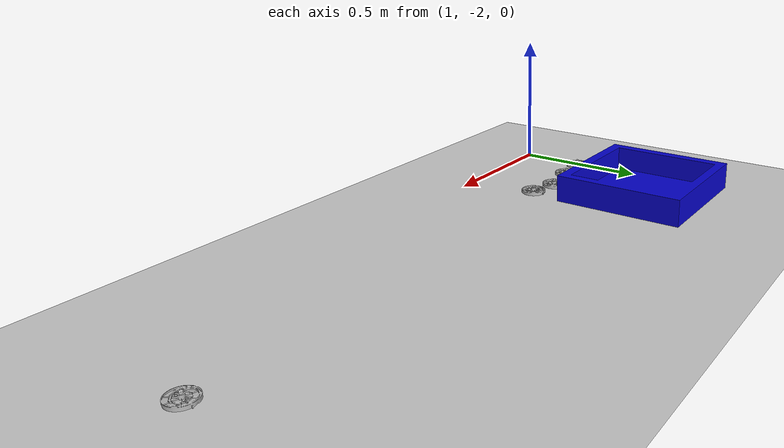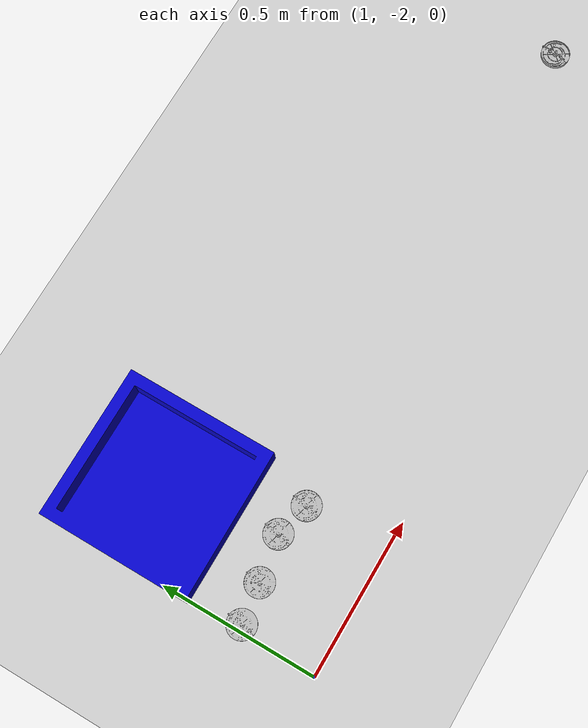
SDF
<sdf version="1.7">
 <world name="default">
  <light name="sun" type="directional">
   <pose>0 0 10 0 -0 0</pose>
   <diffuse>0.8 0.8 0.8 1</diffuse>
   <specular>0.2 0.2 0.2 1</specular>
   <attenuation>
    <range>1000</range>
    <constant>0.9</constant>
    <linear>0.01</linear>
    <quadratic>0.001</quadratic>
   </attenuation>
   <direction>-0.5 0.1 -0.9</direction>
   <spot><inner_angle>0</inner_angle><outer_angle>0</outer_angle><falloff>0</falloff></spot>
  </light>
  <model name="ground_plane">
   <static>1</static>
   <link name="link">
    <collision name="collision">
     <geometry><plane><normal>0 0 1</normal><size>100 100</size></plane></geometry>
     <surface><friction><ode><mu>100</mu><mu2>50</mu2></ode></friction></surface>
    </collision>
    <visual name="visual">
     <cast_shadows>0</cast_shadows>
     <geometry><plane><normal>0 0 1</normal><size>100 100</size></plane></geometry>
     <material>
      <script><uri>file://media/materials/scripts/gazebo.material</uri><name>Gazebo/Grey</name></script>
     </material>
    </visual>
   </link>
  </model>
  <gravity>0 0 -9.8</gravity>
  <magnetic_field>6e-06 2.3e-05 -4.2e-05</magnetic_field>
  <atmosphere type="adiabatic"/>
  <physics type="ode">
   <max_step_size>0.001</max_step_size>
   <real_time_factor>1</real_time_factor>
   <real_time_update_rate>1000</real_time_update_rate>
  </physics>
  <scene><ambient>0.4 0.4 0.4 1</ambient><background>0.7 0.7 0.7 1</background><shadows>1</shadows></scene>
  <spherical_coordinates>
   <surface_model>EARTH_WGS84</surface_model>
   <latitude_deg>0</latitude_deg>
   <longitude_deg>0</longitude_deg>
   <elevation>0</elevation>
   <heading_deg>0</heading_deg>
  </spherical_coordinates>
  <model name="object_box">
   <pose>1.23317 -1.35039 0 0 -0 0</pose>
   <static>1</static>
   <link name="object_box">
    <inertial>
     <mass>0.2</mass>
     <inertia><ixx>0.0005</ixx><ixy>0</ixy><ixz>0</ixz><iyy>0.0005</iyy><iyz>0</iyz><izz>0.0005</izz></inertia>
    </inertial>
    <collision name="collision">
     <geometry><mesh><uri>model://object_box/meshed/object_box_kai_kai.dae</uri></mesh></geometry>
    </collision>
    <visual name="visual">
     <geometry><mesh><uri>model://object_box/meshed/object_box_kai_kai.dae</uri></mesh></geometry>
    </visual>
   </link>
  </model>
  <model name="HV8">
   <pose>3.0333 -1.69028 -0 -2e-06 -5e-06 2.3e-05</pose>
   <static>0</static>
   <link name="HV8">
    <inertial>
     <mass>0.05</mass>
     <inertia><ixx>0.0002</ixx><ixy>0</ixy><ixz>0</ixz><iyy>0.0002</iyy><iyz>0</iyz><izz>0.0002</izz></inertia>
    </inertial>
    <collision name="collishin">
     <geometry><mesh><uri>model://HV8/meshes/HV8_1.stl</uri></mesh></geometry>
    </collision>
    <visual name="visual"><geometry><mesh><uri>model://HV8/meshes/HV8_1.stl</uri></mesh></geometry></visual>
   </link>
  </model>
  <model name="HV8_0">
   <pose>1.1463 -1.73295 -0 4.3e-05 1.6e-05 2.3e-05</pose>
   <static>0</static>
   <link name="HV8">
    <inertial>
     <mass>0.05</mass>
     <inertia><ixx>0.0002</ixx><ixy>0</ixy><ixz>0</ixz><iyy>0.0002</iyy><iyz>0</iyz><izz>0.0002</izz></inertia>
    </inertial>
    <collision name="collishin">
     <geometry><mesh><uri>model://HV8/meshes/HV8_1.stl</uri></mesh></geometry>
    </collision>
    <visual name="visual"><geometry><mesh><uri>model://HV8/meshes/HV8_1.stl</uri></mesh></geometry></visual>
   </link>
  </model>
  <model name="HV8_1">
   <pose>1.29033 -1.70853 0 2e-06 6e-06 2.3e-05</pose>
   <static>0</static>
   <link name="HV8">
    <inertial>
     <mass>0.05</mass>
     <inertia><ixx>0.0002</ixx><ixy>0</ixy><ixz>0</ixz><iyy>0.0002</iyy><iyz>0</iyz><izz>0.0002</izz></inertia>
    </inertial>
    <collision name="collishin">
     <geometry><mesh><uri>model://HV8/meshes/HV8_1.stl</uri></mesh></geometry>
    </collision>
    <visual name="visual"><geometry><mesh><uri>model://HV8/meshes/HV8_1.stl</uri></mesh></geometry></visual>
   </link>
  </model>
  <model name="HV8_2">
   <pose>1.40114 -1.73712 -2e-06 2.7e-05 4.1e-05 2.1e-05</pose>
   <static>0</static>
   <link name="HV8">
    <inertial>
     <mass>0.05</mass>
     <inertia><ixx>0.0002</ixx><ixy>0</ixy><ixz>0</ixz><iyy>0.0002</iyy><iyz>0</iyz><izz>0.0002</izz></inertia>
    </inertial>
    <collision name="collishin">
     <geometry><mesh><uri>model://HV8/meshes/HV8_1.stl</uri></mesh></geometry>
    </collision>
    <visual name="visual"><geometry><mesh><uri>model://HV8/meshes/HV8_1.stl</uri></mesh></geometry></visual>
   </link>
  </model>
  <model name="HV8_3">
   <pose>1.02089 -1.7495 -1e-06 -0.00012 9.6e-05 1.4e-05</pose>
   <static>0</static>
   <link name="HV8">
    <inertial>
     <mass>0.05</mass>
     <inertia><ixx>0.0002</ixx><ixy>0</ixy><ixz>0</ixz><iyy>0.0002</iyy><iyz>0</iyz><izz>0.0002</izz></inertia>
    </inertial>
    <collision name="collishin">
     <geometry><mesh><uri>model://HV8/meshes/HV8_1.stl</uri></mesh></geometry>
    </collision>
    <visual name="visual"><geometry><mesh><uri>model://HV8/meshes/HV8_1.stl</uri></mesh></geometry></visual>
   </link>
  </model>
 </world>
</sdf>
